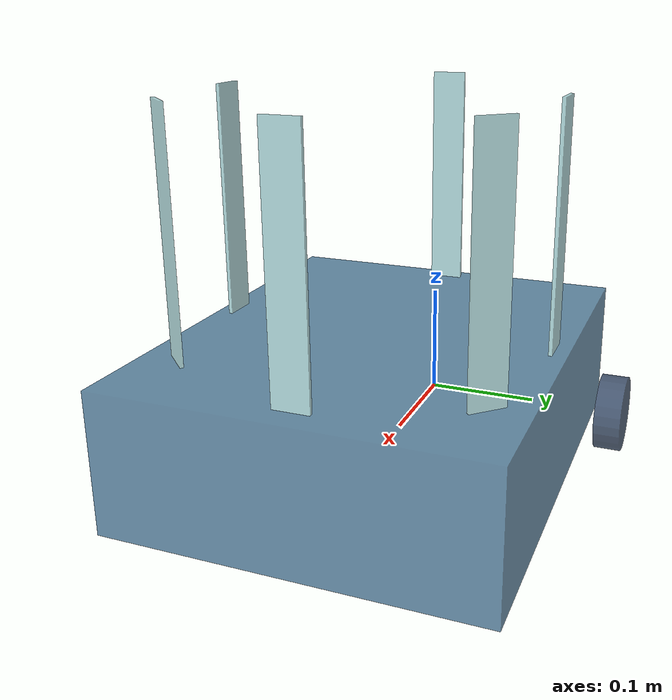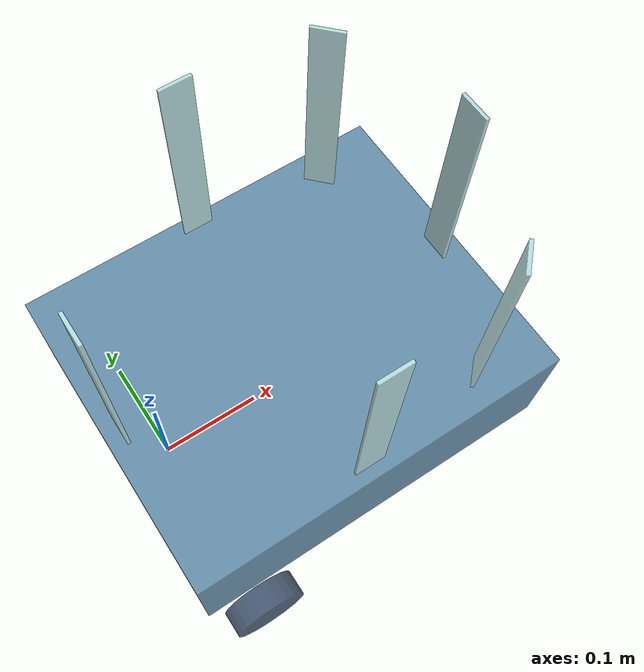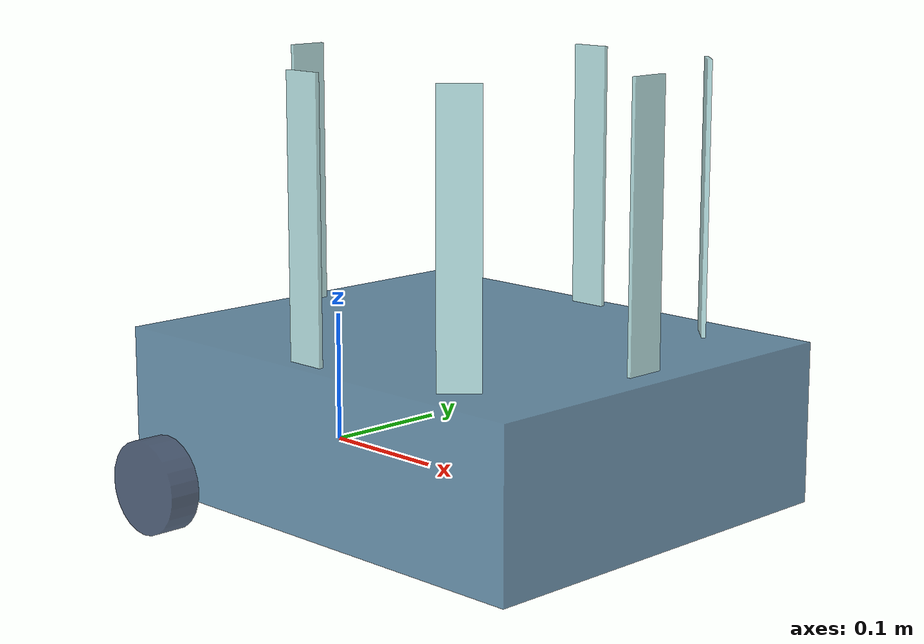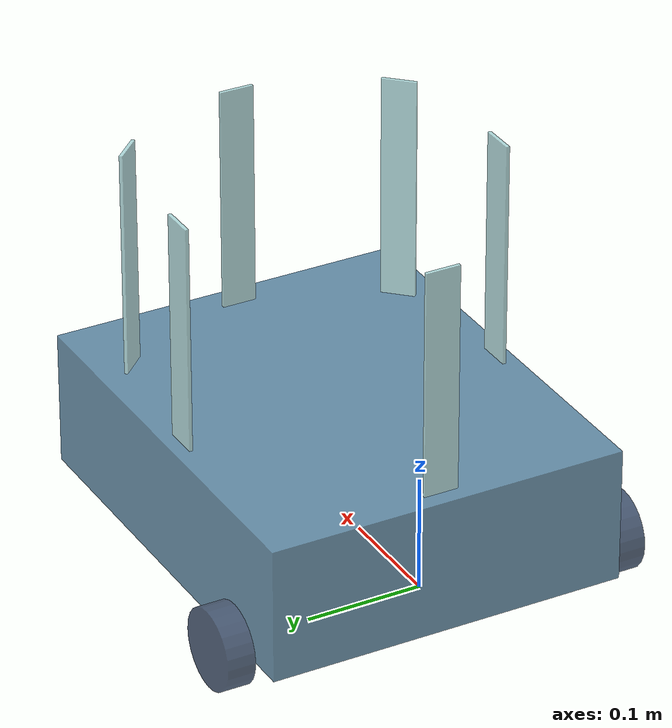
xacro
<?xml version="1.0"?>

<robot name="robaato" xmlns:xacro="http://www.ros.org/wiki/xacro">

  <xacro:include filename="$(find robaato_description)/urdf/robaato.gazebo"/>
  <xacro:include filename="$(find robaato_description)/urdf/materials.xacro"/>
  <xacro:include filename="$(find robaato_description)/urdf/macros.xacro"/>
  <xacro:include filename="$(find robaato_description)/urdf/properties.xacro"/>

  <link name="base_link">
    <inertial>
      <origin xyz="0 0 0" rpy="0 0 0"/>
      <mass value="0.0"/>
      <xacro:sphere_inertia
        m="0.0"
        r="0.1"
      />
    </inertial>
  </link>

  <link name="chassis">
    <inertial>
      <origin xyz="0 0 0" rpy="0 0 0"/>
      <mass value="${chassis_w}"/>
      <xacro:box_inertia
        m="${chassis_w}"
        x="${chassis_x}"
        y="${chassis_y}"
        z="${chassis_z}"
      />
    </inertial>

    <visual name="chassis_visual">
      <origin xyz="0 0 0" rpy="0 0 0"/>
      <geometry>
        <box size="${chassis_x} ${chassis_y} ${chassis_z}"/>
      </geometry>
      <material name="blue2"/>
    </visual>

    <collision name="chassis_collision">
      <origin xyz="0 0 0" rpy="0 0 0"/>
      <geometry>
        <box size="${chassis_x} ${chassis_y} ${chassis_z}"/>
      </geometry>
    </collision>

    <visual name="caster_visual">
      <origin xyz="${chassis_x/4} 0 ${-chassis_z/2}" rpy="0 0 0"/>
      <geometry>
        <sphere radius="${caster_r}"/>
      </geometry>
      <material name="blue2"/>
    </visual>

    <collision name="caster_collision">
      <origin xyz="${chassis_x/4} 0 ${-chassis_z/2}" rpy="0 0 0"/>
      <geometry>
        <sphere radius="${caster_r}"/>
      </geometry>
    </collision>
  </link>

  <link name="left_wheel_link">
    <inertial>
      <origin xyz="0 0 0" rpy="${PI/2} 0 0"/>
      <mass value="${wheel_w}"/>
      <xacro:cylinder_inertia
        m="${wheel_w}"
        r="${wheel_r}"
        h="${wheel_d}"
      />
    </inertial>

    <visual>
      <origin xyz="0 0 0" rpy="${PI/2} 0 0"/>
      <geometry>
        <cylinder radius="${wheel_r}" length="${wheel_d}"/>
      </geometry>
      <material name="blue1"/>
    </visual>

    <collision>
      <origin xyz="0 0 0" rpy="${PI/2} 0 0"/>
      <geometry>
        <cylinder radius="${wheel_r}" length="${wheel_d}"/>
      </geometry>
    </collision>
  </link>

  <link name="right_wheel_link">
    <inertial>
      <origin xyz="0 0 0" rpy="${PI/2} 0 0"/>
      <mass value="${wheel_w}"/>
      <xacro:cylinder_inertia
        m="${wheel_w}"
        r="${wheel_r}"
        h="${wheel_d}"
      />
    </inertial>

    <visual>
      <origin xyz="0 0 0" rpy="${PI/2} 0 0"/>
      <geometry>
        <cylinder radius="${wheel_r}" length="${wheel_d}"/>
      </geometry>
      <material name="blue1"/>
    </visual>

    <collision>
      <origin xyz="0 0 0" rpy="${PI/2} 0 0"/>
      <geometry>
        <cylinder radius="${wheel_r}" length="${wheel_d}"/>
      </geometry>
    </collision>
  </link>

  <joint name="chassis_joint" type="fixed">
    <origin xyz="${chassis_x/2-wheel_dx} 0 ${chassis_z/2-wheel_dz}" rpy="0 0 0"/>
    <parent link="base_link"/>
    <child link="chassis"/>

  </joint>

  <joint name="left_wheel_joint" type="continuous">
    <origin xyz="${-chassis_x/2+wheel_dx} ${chassis_y/2+wheel_dy+wheel_d/2} ${-chassis_z/2+wheel_dz}" rpy="0 0 0"/>
    <parent link="chassis"/>
    <child link="left_wheel_link"/>
    <axis xyz="0 1 0" rpy="0 0 0"/>
    <limit effort="100" velocity="100"/>
    <joint_properties damping="0" friction="0"/>
  </joint>

  <joint name="right_wheel_joint" type="continuous">
    <origin xyz="${-chassis_x/2+wheel_dx} ${-chassis_y/2-wheel_dy-wheel_d/2} ${-chassis_z/2+wheel_dz}" rpy="0 0 0"/>
    <parent link="chassis"/>
    <child link="right_wheel_link"/>
    <axis xyz="0 1 0" rpy="0 0 0"/>
    <joint_properties damping="0" friction="0"/>
  </joint>

  <xacro:tof_sensor
    tof_name="fm"
    pos_x="${0.1675}"
    pos_y="0"
    pos_z="0"
    ang_r="0"
    ang_p="0"
    ang_y="0"
  />

  <xacro:tof_sensor
    tof_name="fl"
    pos_x="${0.11698}"
    pos_y="${0.12504}"
    pos_z="0"
    ang_r="0"
    ang_p="0"
    ang_y="${44*PI/180}"
  />

  <xacro:tof_sensor
    tof_name="fr"
    pos_x="${0.11698}"
    pos_y="${-0.12504}"
    pos_z="0"
    ang_r="0"
    ang_p="0"
    ang_y="${-44*PI/180}"
  />

  <xacro:tof_sensor
    tof_name="sl"
    pos_x="${-0.0125}"
    pos_y="${0.145}"
    pos_z="0"
    ang_r="0"
    ang_p="0"
    ang_y="${PI/2}"
  />

  <xacro:tof_sensor
    tof_name="sr"
    pos_x="${-0.0125}"
    pos_y="${-0.145}"
    pos_z="0"
    ang_r="0"
    ang_p="0"
    ang_y="${-PI/2}"
  />

  <xacro:tof_sensor
    tof_name="bm"
    pos_x="${-0.177}"
    pos_y="0"
    pos_z="0"
    ang_r="0"
    ang_p="0"
    ang_y="${PI}"
  />

</robot>

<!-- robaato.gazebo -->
<robot name="robaato" xmlns:xacro="http://www.ros.org/wiki/xacro">

  <xacro:include filename="$(find robaato_description)/urdf/properties.xacro"/>

  <gazebo>
    <plugin name="differential_drive_controller" filename="libgazebo_ros_diff_drive.so">
      <alwaysOn>true</alwaysOn>
      <updateRate>${actuator_update_rate}</updateRate>
      <leftJoint>left_wheel_joint</leftJoint>
      <rightJoint>right_wheel_joint</rightJoint>
      <wheelSeparation>${chassis_y+wheel_d+2*wheel_dy}</wheelSeparation>
      <wheelDiameter>${2*wheel_r}</wheelDiameter>
      <torque>20</torque>
      <commandTopic>cmd_vel</commandTopic>
      <odometryTopic>odom</odometryTopic>
      <odometryFrame>odom</odometryFrame>
      <robotBaseFrame>chassis</robotBaseFrame>
    </plugin>
  </gazebo>

</robot>

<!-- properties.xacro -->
<robot name="robaato" xmlns:xacro="http://www.ros.org/wiki/xacro">

  <xacro:property name="PI" value="3.141592653589793"/>

  <xacro:property name="chassis_x" value="0.38000"/>
  <xacro:property name="chassis_y" value="0.31400"/>
  <xacro:property name="chassis_z" value="0.11900"/>
  <xacro:property name="chassis_w" value="3.00000"/>

  <xacro:property name="wheel_r" value="0.0350"/>
  <xacro:property name="wheel_d" value="0.0240"/>
  <xacro:property name="wheel_w" value="0.1000"/>

  <xacro:property name="wheel_dx" value="0.04848"/>
  <xacro:property name="wheel_dy" value="0.00850"/>
  <xacro:property name="wheel_dz" value="0.01220"/>

  <xacro:property name="caster_r" value="${wheel_r-wheel_dz}"/>

  <xacro:property name="tof_x" value="0.00300"/>
  <xacro:property name="tof_y" value="0.03000"/>
  <xacro:property name="tof_z" value="0.20000"/>
  <xacro:property name="tof_h" value="${0.8*tof_z}"/>
  <xacro:property name="tof_w" value="0.00500"/>

  <xacro:property name="tof_scan_angle" value="${PI/12}"/>
  <xacro:property name="tof_dist_min" value="0.0005"/>
  <xacro:property name="tof_dist_max" value="1.0000"/>
  <xacro:property name="tof_linear_res" value="0.01"/>

  <xacro:property name="sensor_update_rate" value="10"/>
  <xacro:property name="actuator_update_rate" value="20"/>

</robot>

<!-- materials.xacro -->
<robot>

  <material name="black">
    <color rgba="0 0 0 0.8"/>
  </material>

  <material name="blue1">
    <color rgba="0.141 0.220 0.349 0.8"/>
  </material>

  <material name="blue2">
    <color rgba="0.278 0.475 0.612 0.8"/>
  </material>

  <material name="blue3">
    <color rgba="0.651 0.851 0.863 0.8"/>
  </material>

  <material name="green">
    <color rgba="0.397 0.743 0.244 0.8"/>
  </material>

  <material name="grey">
    <color rgba="0.2 0.2 0.2 0.8"/>
  </material>

  <material name="orange">
    <color rgba="0.988 0.718 0.166 0.8"/>
  </material>

  <material name="brown">
    <color rgba="0.759 0.437 0.046 0.8"/>
  </material>

  <material name="red">
    <color rgba="0.759 0.046 0.046 0.8"/>
  </material>

  <material name="ivory">
    <color rgba="0.941 0.980 0.937 0.8"/>
  </material>

  <material name="white">
    <color rgba="1 1 1 0.8"/>
  </material>

</robot>

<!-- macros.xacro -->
<robot name="robaato" xmlns:xacro="http://www.ros.org/wiki/xacro">

  <xacro:macro name="cylinder_inertia" params="m r h">
    <inertia
      ixx="${m*(3*r*r+h*h)/12}"
      ixy = "0"
      ixz = "0"
      iyy="${m*(3*r*r+h*h)/12}"
      iyz = "0"
      izz="${m*r*r/2}"
    />
  </xacro:macro>

  <xacro:macro name="box_inertia" params="m x y z">
    <inertia
      ixx="${m*(y*y+z*z)/12}"
      ixy = "0"
      ixz = "0"
      iyy="${m*(x*x+z*z)/12}"
      iyz = "0"
      izz="${m*(x*x+y*y)/12}"
    />
  </xacro:macro>

  <xacro:macro name="sphere_inertia" params="m r">
    <inertia
      ixx="${2*m*r*r/5}"
      ixy = "0"
      ixz = "0"
      iyy="${2*m*r*r/5}"
      iyz = "0"
      izz="${2*m*r*r/5}"
    />
  </xacro:macro>

  <xacro:macro name="tof_sensor" params="tof_name pos_x pos_y pos_z ang_r ang_p ang_y">

    <link name="tof_${tof_name}_link">
      <inertial>
        <origin xyz="${-tof_x/2} 0 ${tof_z/2-tof_h}" rpy="0 0 0"/>
        <mass value="${tof_w}"/>
        <xacro:box_inertia
          m="${tof_w}"
          x="${tof_x}"
          y="${tof_y}"
          z="${tof_z}"
        />
      </inertial>

      <visual>
        <origin xyz="${-tof_x/2} 0 ${tof_z/2-tof_h}" rpy="0 0 0"/>
        <geometry>
          <box size="${tof_x} ${tof_y} ${tof_z}"/>
        </geometry>
        <material name="blue3"/>
      </visual>

      <collision>
        <origin xyz="${-tof_x/2} 0 ${tof_z/2-tof_h}" rpy="0 0 0"/>
        <geometry>
          <box size="${tof_x} ${tof_y} ${tof_z}"/>
        </geometry>
      </collision>
    </link>

    <joint name="tof_${tof_name}_joint" type="fixed">
      <origin xyz="${pos_x+tof_x/2} ${pos_y} ${pos_z+chassis_z/2+tof_h}" rpy="${ang_r} ${ang_p} ${ang_y}"/>
      <parent link="chassis"/>
      <child link="tof_${tof_name}_link"/>
    </joint>

    <gazebo reference="tof_${tof_name}_link">
      <sensor type="ray" name="tof_${tof_name}">
        <pose>0 0 0 0 0 0</pose>
        <ray>
          <scan>
            <horizontal>
              <samples>2</samples>
              <resolution>1</resolution>
              <min_angle>${-tof_scan_angle}</min_angle>
              <max_angle>${tof_scan_angle}</max_angle>
            </horizontal>
          </scan>
          <range>
            <min>${tof_dist_min}</min>
            <max>${tof_dist_max}</max>
            <resolution>${tof_linear_res}</resolution>
          </range>
        </ray>
        <plugin name="laser" filename="libgazebo_ros_laser.so">
          <topicName>tof_${tof_name}/scan</topicName>
          <frameName>tof_${tof_name}_link</frameName>
        </plugin>
        <alwaysOn>1</alwaysOn>
        <update_rate>${sensor_update_rate}</update_rate>
        <visualize>true</visualize>
      </sensor>
    </gazebo>

  </xacro:macro>

</robot>
